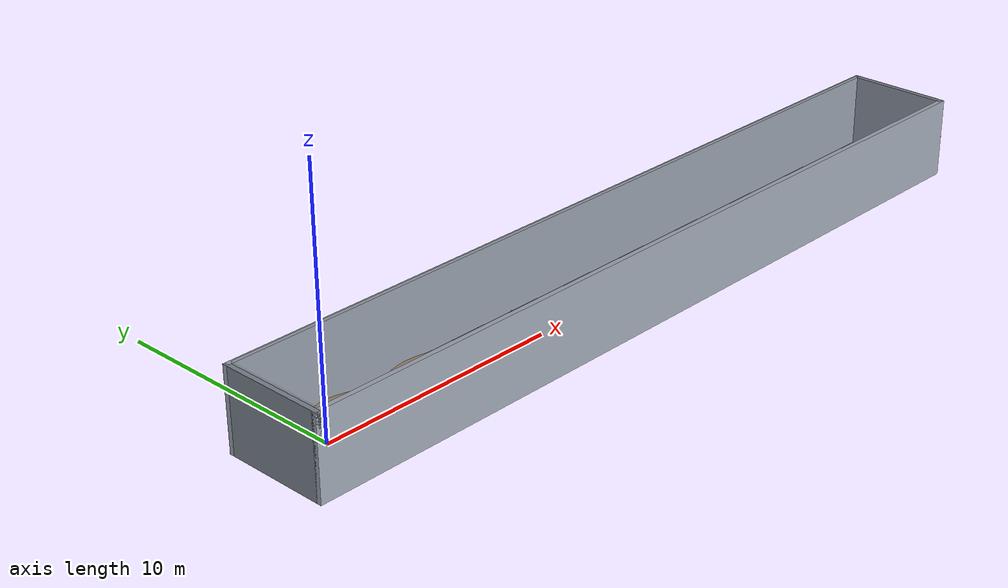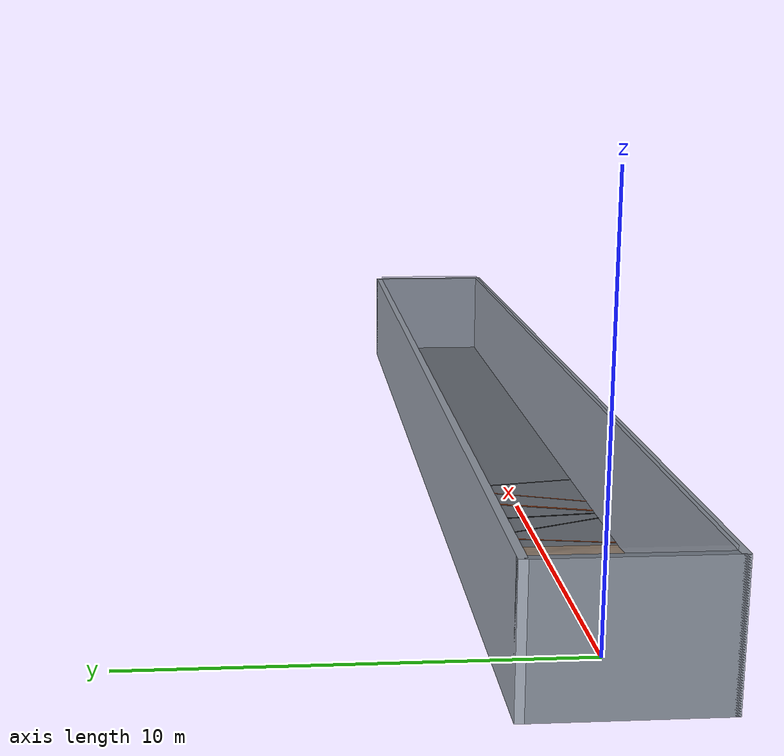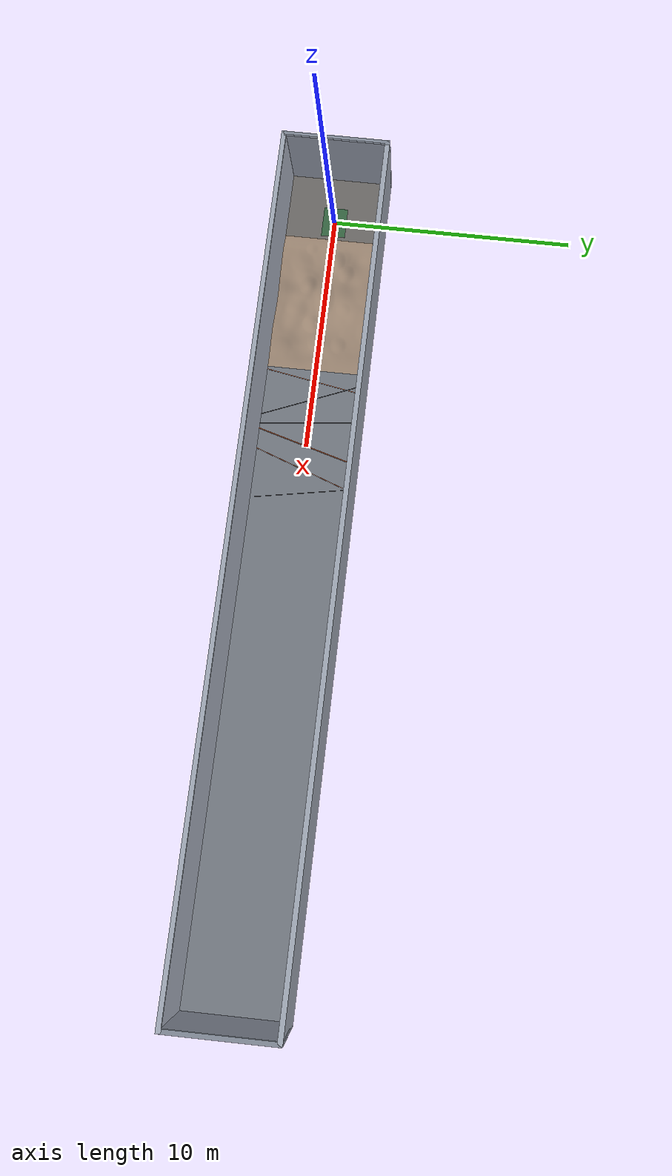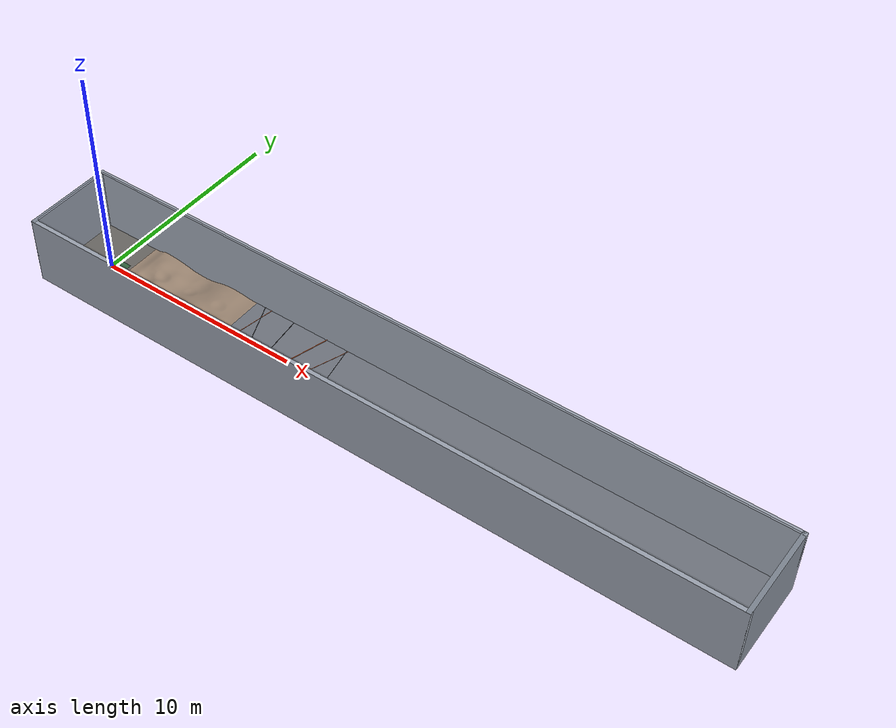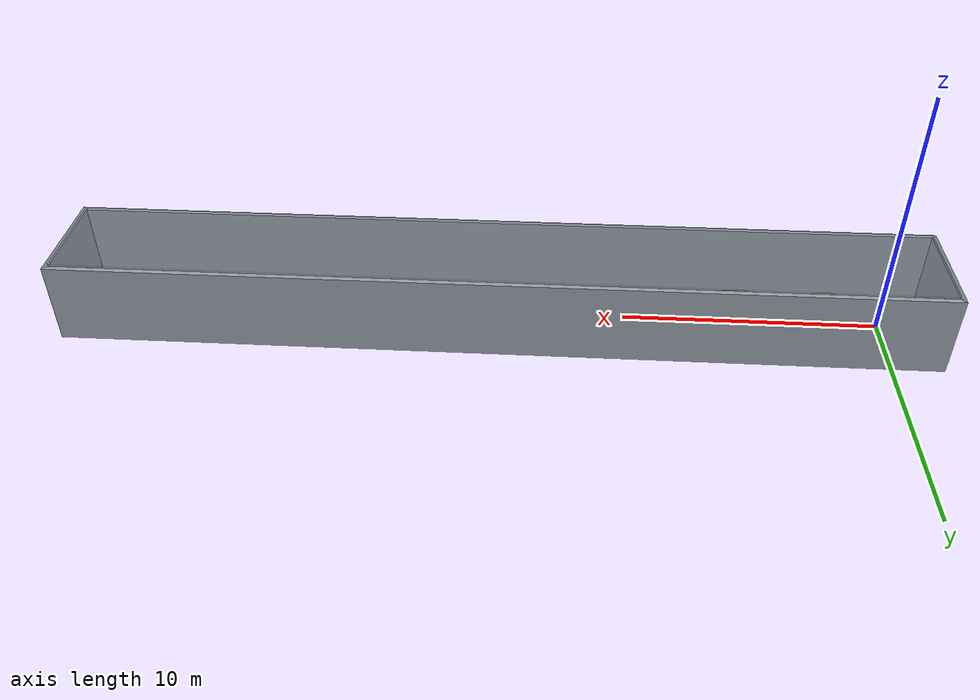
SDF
<?xml version='1.0' encoding='utf-8'?>
<sdf version="1.9">
  <world name="combined_hall">
    <physics name="2ms_training" type="ignored">
      <max_step_size>0.002</max_step_size>
      <real_time_factor>1.0</real_time_factor>
    </physics>
    <plugin filename="gz-sim-physics-system" name="gz::sim::systems::Physics" />
    <plugin filename="gz-sim-user-commands-system" name="gz::sim::systems::UserCommands" />
    <plugin filename="gz-sim-scene-broadcaster-system" name="gz::sim::systems::SceneBroadcaster" />
    <gravity>0 0 -9.80665</gravity>
    <scene>
      <ambient>0.28 0.28 0.30 1</ambient>
      <background>0.08 0.09 0.12 1</background>
      <shadows>true</shadows>
      <grid>false</grid>
    </scene>
    <light name="lamp_01" type="point">
      <pose>2 0 2.7 0 0 0</pose>
      <cast_shadows>false</cast_shadows>
      <diffuse>0.95 0.92 0.84 1</diffuse>
      <specular>0.15 0.15 0.15 1</specular>
      <attenuation>
        <range>11</range>
        <constant>0.4</constant>
        <linear>0.08</linear>
        <quadratic>0.01</quadratic>
      </attenuation>
    </light>
    <light name="lamp_02" type="point">
      <pose>10 0 2.7 0 0 0</pose>
      <cast_shadows>false</cast_shadows>
      <diffuse>0.95 0.92 0.84 1</diffuse>
      <specular>0.15 0.15 0.15 1</specular>
      <attenuation>
        <range>11</range>
        <constant>0.4</constant>
        <linear>0.08</linear>
        <quadratic>0.01</quadratic>
      </attenuation>
    </light>
    <light name="lamp_03" type="point">
      <pose>18 0 2.7 0 0 0</pose>
      <cast_shadows>false</cast_shadows>
      <diffuse>0.95 0.92 0.84 1</diffuse>
      <specular>0.15 0.15 0.15 1</specular>
      <attenuation>
        <range>11</range>
        <constant>0.4</constant>
        <linear>0.08</linear>
        <quadratic>0.01</quadratic>
      </attenuation>
    </light>
    <light name="lamp_04" type="point">
      <pose>26 0 2.7 0 0 0</pose>
      <cast_shadows>false</cast_shadows>
      <diffuse>0.95 0.92 0.84 1</diffuse>
      <specular>0.15 0.15 0.15 1</specular>
      <attenuation>
        <range>11</range>
        <constant>0.4</constant>
        <linear>0.08</linear>
        <quadratic>0.01</quadratic>
      </attenuation>
    </light>
    <model name="enclosed_hall">
      <static>true</static>
      <link name="structure">
        <collision name="left_wall_collision">
          <pose>15 2.1 1.35 0 0 0</pose>
          <geometry>
            <box>
              <size>34.4 0.2 3.3</size>
            </box>
          </geometry>
        </collision>
        <visual name="left_wall_visual">
          <pose>15 2.1 1.35 0 0 0</pose>
          <geometry>
            <box>
              <size>34.4 0.2 3.3</size>
            </box>
          </geometry>
          <material>
            <ambient>0.52 0.55 0.60 1</ambient>
            <diffuse>0.62 0.65 0.70 1</diffuse>
          </material>
        </visual>
        <collision name="right_wall_collision">
          <pose>15 -2.1 1.35 0 0 0</pose>
          <geometry>
            <box>
              <size>34.4 0.2 3.3</size>
            </box>
          </geometry>
        </collision>
        <visual name="right_wall_visual">
          <pose>15 -2.1 1.35 0 0 0</pose>
          <geometry>
            <box>
              <size>34.4 0.2 3.3</size>
            </box>
          </geometry>
          <material>
            <ambient>0.52 0.55 0.60 1</ambient>
            <diffuse>0.62 0.65 0.70 1</diffuse>
          </material>
        </visual>
        <collision name="rear_wall_collision">
          <pose>-2.1 0 1.35 0 0 0</pose>
          <geometry>
            <box>
              <size>0.2 4.4 3.3</size>
            </box>
          </geometry>
        </collision>
        <visual name="rear_wall_visual">
          <pose>-2.1 0 1.35 0 0 0</pose>
          <geometry>
            <box>
              <size>0.2 4.4 3.3</size>
            </box>
          </geometry>
          <material>
            <ambient>0.40 0.43 0.48 1</ambient>
            <diffuse>0.50 0.53 0.58 1</diffuse>
          </material>
        </visual>
        <collision name="front_wall_collision">
          <pose>32.1 0 1.35 0 0 0</pose>
          <geometry>
            <box>
              <size>0.2 4.4 3.3</size>
            </box>
          </geometry>
        </collision>
        <visual name="front_wall_visual">
          <pose>32.1 0 1.35 0 0 0</pose>
          <geometry>
            <box>
              <size>0.2 4.4 3.3</size>
            </box>
          </geometry>
          <material>
            <ambient>0.40 0.43 0.48 1</ambient>
            <diffuse>0.50 0.53 0.58 1</diffuse>
          </material>
        </visual>
        <collision name="ceiling_collision">
          <pose>15 0 3.05 0 0 0</pose>
          <geometry>
            <box>
              <size>34 4 0.1</size>
            </box>
          </geometry>
        </collision>
        <visual name="ceiling_visual">
          <pose>15 0 3.05 0 0 0</pose>
          <geometry>
            <box>
              <size>34 4 0.1</size>
            </box>
          </geometry>
          <transparency>0.70</transparency>
          <cast_shadows>false</cast_shadows>
          <material>
            <ambient>0.45 0.47 0.52 1</ambient>
            <diffuse>0.55 0.57 0.62 1</diffuse>
          </material>
        </visual>
        <collision name="spawn_floor_collision">
          <pose>-0.600000 0 -0.05 0 0 0</pose>
          <geometry>
            <box>
              <size>2.800000 4 0.1</size>
            </box>
          </geometry>
          <surface>
            <friction>
              <ode>
                <mu>1.0</mu>
                <mu2>1.0</mu2>
              </ode>
            </friction>
          </surface>
        </collision>
        <visual name="spawn_floor_visual">
          <pose>-0.600000 0 -0.05 0 0 0</pose>
          <geometry>
            <box>
              <size>2.800000 4 0.1</size>
            </box>
          </geometry>
          <material>
            <ambient>0.38 0.36 0.32 1</ambient>
            <diffuse>0.38 0.36 0.32 1</diffuse>
          </material>
        </visual>
        <collision name="flat_cable_floor_collision">
          <pose>19.358398 0 -0.05 0 0 0</pose>
          <geometry>
            <box>
              <size>25.283203 4 0.1</size>
            </box>
          </geometry>
          <surface>
            <friction>
              <ode>
                <mu>1.0</mu>
                <mu2>1.0</mu2>
              </ode>
            </friction>
          </surface>
        </collision>
        <visual name="flat_cable_floor_visual">
          <pose>19.358398 0 -0.05 0 0 0</pose>
          <geometry>
            <box>
              <size>25.283203 4 0.1</size>
            </box>
          </geometry>
          <material>
            <ambient>0.42 0.44 0.47 1</ambient>
            <diffuse>0.42 0.44 0.47 1</diffuse>
          </material>
        </visual>
      </link>
    </model>
    <model name="cable_bumps">
      <static>true</static>
      <link name="cables">
        <collision name="cable_05_collision">
          <pose>8.0 0 0.012 1.57079632679 0 0.383972435</pose>
          <geometry>
            <cylinder>
              <radius>0.012</radius>
              <length>4.314139</length>
            </cylinder>
          </geometry>
          <surface>
            <friction>
              <ode>
                <mu>0.9</mu>
                <mu2>0.9</mu2>
              </ode>
            </friction>
          </surface>
        </collision>
        <visual name="cable_05_visual">
          <pose>8.0 0 0.012 1.57079632679 0 0.383972435</pose>
          <geometry>
            <cylinder>
              <radius>0.012</radius>
              <length>4.314139</length>
            </cylinder>
          </geometry>
          <material>
            <ambient>0.04 0.04 0.04 1</ambient>
            <diffuse>0.08 0.08 0.08 1</diffuse>
          </material>
        </visual>
        <collision name="cable_06_collision">
          <pose>10.0 0 0.018 1.57079632679 0 -0.279252680</pose>
          <geometry>
            <cylinder>
              <radius>0.018</radius>
              <length>4.161198</length>
            </cylinder>
          </geometry>
          <surface>
            <friction>
              <ode>
                <mu>0.9</mu>
                <mu2>0.9</mu2>
              </ode>
            </friction>
          </surface>
        </collision>
        <visual name="cable_06_visual">
          <pose>10.0 0 0.018 1.57079632679 0 -0.279252680</pose>
          <geometry>
            <cylinder>
              <radius>0.018</radius>
              <length>4.161198</length>
            </cylinder>
          </geometry>
          <material>
            <ambient>0.42 0.15 0.02 1</ambient>
            <diffuse>0.92 0.32 0.04 1</diffuse>
          </material>
        </visual>
        <collision name="cable_07_collision">
          <pose>12.0 0 0.009 1.57079632679 0 0.174532925</pose>
          <geometry>
            <cylinder>
              <radius>0.009</radius>
              <length>4.061706</length>
            </cylinder>
          </geometry>
          <surface>
            <friction>
              <ode>
                <mu>0.9</mu>
                <mu2>0.9</mu2>
              </ode>
            </friction>
          </surface>
        </collision>
        <visual name="cable_07_visual">
          <pose>12.0 0 0.009 1.57079632679 0 0.174532925</pose>
          <geometry>
            <cylinder>
              <radius>0.009</radius>
              <length>4.061706</length>
            </cylinder>
          </geometry>
          <material>
            <ambient>0.04 0.04 0.04 1</ambient>
            <diffuse>0.08 0.08 0.08 1</diffuse>
          </material>
        </visual>
        <collision name="cable_20_collision">
          <pose>7.20 0 0.011 1.57079632679 0 -0.174532925</pose>
          <geometry>
            <cylinder>
              <radius>0.011</radius>
              <length>4.061706</length>
            </cylinder>
          </geometry>
          <surface>
            <friction>
              <ode>
                <mu>0.9</mu>
                <mu2>0.9</mu2>
              </ode>
            </friction>
          </surface>
        </collision>
        <visual name="cable_20_visual">
          <pose>7.20 0 0.011 1.57079632679 0 -0.174532925</pose>
          <geometry>
            <cylinder>
              <radius>0.011</radius>
              <length>4.061706</length>
            </cylinder>
          </geometry>
          <material>
            <ambient>0.42 0.15 0.02 1</ambient>
            <diffuse>0.92 0.32 0.04 1</diffuse>
          </material>
        </visual>
        <collision name="cable_21_collision">
          <pose>9.00 0 0.013 1.57079632679 0 0.104719755</pose>
          <geometry>
            <cylinder>
              <radius>0.013</radius>
              <length>4.022033</length>
            </cylinder>
          </geometry>
          <surface>
            <friction>
              <ode>
                <mu>0.9</mu>
                <mu2>0.9</mu2>
              </ode>
            </friction>
          </surface>
        </collision>
        <visual name="cable_21_visual">
          <pose>9.00 0 0.013 1.57079632679 0 0.104719755</pose>
          <geometry>
            <cylinder>
              <radius>0.013</radius>
              <length>4.022033</length>
            </cylinder>
          </geometry>
          <material>
            <ambient>0.04 0.04 0.04 1</ambient>
            <diffuse>0.08 0.08 0.08 1</diffuse>
          </material>
        </visual>
        <collision name="cable_22_collision">
          <pose>11.00 0 0.010 1.57079632679 0 -0.349065850</pose>
          <geometry>
            <cylinder>
              <radius>0.010</radius>
              <length>4.256711</length>
            </cylinder>
          </geometry>
          <surface>
            <friction>
              <ode>
                <mu>0.9</mu>
                <mu2>0.9</mu2>
              </ode>
            </friction>
          </surface>
        </collision>
        <visual name="cable_22_visual">
          <pose>11.00 0 0.010 1.57079632679 0 -0.349065850</pose>
          <geometry>
            <cylinder>
              <radius>0.010</radius>
              <length>4.256711</length>
            </cylinder>
          </geometry>
          <material>
            <ambient>0.42 0.15 0.02 1</ambient>
            <diffuse>0.92 0.32 0.04 1</diffuse>
          </material>
        </visual>
      </link>
    </model>
    <model name="spawn_clear_zone">
      <static>true</static>
      <link name="marker">
        <visual name="spawn_pad_visual">
          <pose>0 0 0.001 0 0 0</pose>
          <geometry>
            <box>
              <size>1.30 1.00 0.002</size>
            </box>
          </geometry>
          <material>
            <ambient>0.04 0.20 0.08 1</ambient>
            <diffuse>0.08 0.34 0.12 1</diffuse>
          </material>
        </visual>
      </link>
    </model>
    <model name="rough_approach_ground">
      <static>true</static>
      <link name="ground">
        <collision name="rough_collision">
          <pose>3.758398 0 0 0 0 0</pose>
          <geometry>
            <mesh>
              <uri>model://nino_description/terrains/combined_rough_ground.stl</uri>
            </mesh>
          </geometry>
          <surface>
            <friction>
              <ode>
                <mu>1.0</mu>
                <mu2>1.0</mu2>
              </ode>
            </friction>
          </surface>
        </collision>
        <visual name="rough_visual">
          <pose>3.758398 0 0 0 0 0</pose>
          <geometry>
            <mesh>
              <uri>model://nino_description/terrains/combined_rough_ground.stl</uri>
            </mesh>
          </geometry>
          <material>
            <ambient>0.55 0.43 0.32 1</ambient>
            <diffuse>0.65 0.52 0.39 1</diffuse>
          </material>
        </visual>
      </link>
    </model>
  </world>
</sdf>
